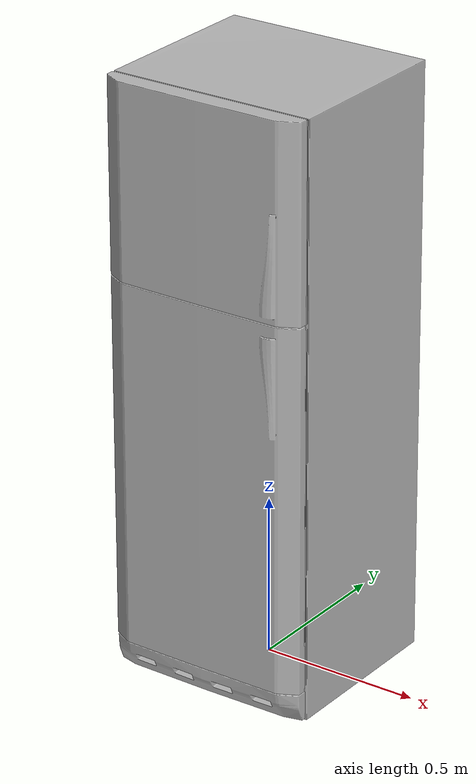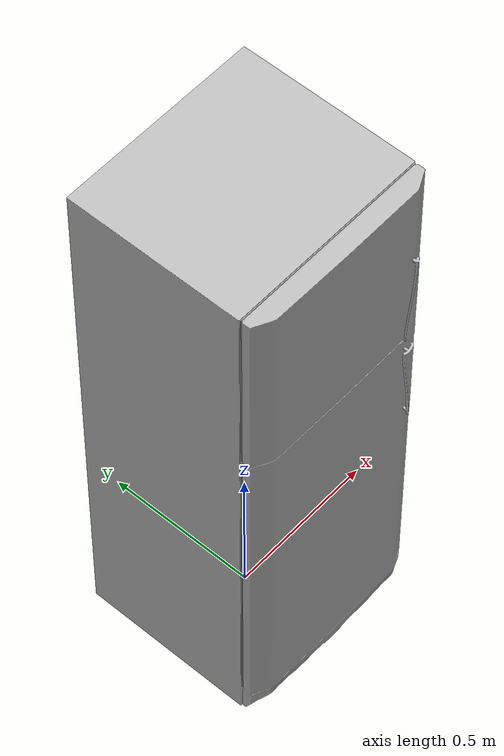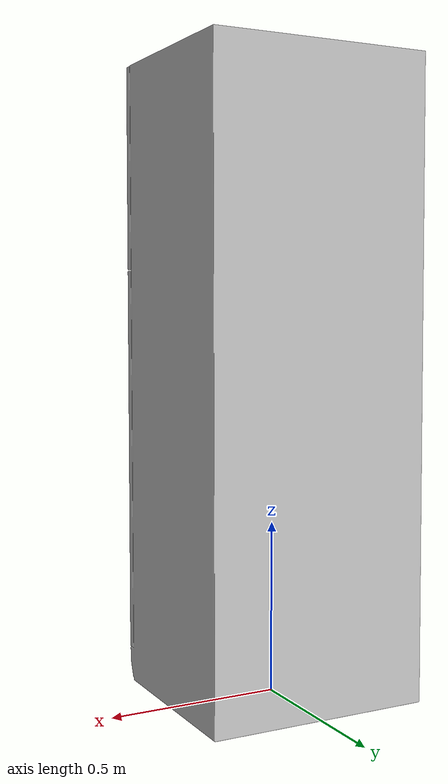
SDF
<?xml version='1.0'?>
<sdf version='1.6'>
  <model name='11_Fridge'>
    <link name='body'>
	  <inertial>
        <mass>90</mass>
        <pose frame=''>0 0 0 0 0 0</pose>
        <inertia>
          <ixx>29.473567499</ixx>
          <ixy>0</ixy>
          <ixz>0</ixz>
          <iyy>28.8525675</iyy>
          <iyz>0</iyz>
          <izz>7.154999</izz>
        </inertia>
      </inertial>
      <pose frame=''>0 0 0 0 -0 0</pose>
      <self_collide>0</self_collide>
      <kinematic>0</kinematic>
      <gravity>1</gravity>
      <visual name='visual'>
        <geometry>
          <mesh>
            <uri>model://Fridge_eeb632244952_lod0/meshes/visual_LowPoly_11_Fridge.dae</uri>
          </mesh>
        </geometry>
		<meta> <layer> 1 </layer></meta>
      </visual>
      <collision name='collision_0'>
        <laser_retro>0</laser_retro>
        <max_contacts>10</max_contacts>
        <pose frame=''>0 0 0 0 -0 0</pose>
        <geometry>
          <mesh>
            <uri>model://Fridge_eeb632244952_lod0/meshes/collision_11_Fridge.dae</uri>
            <scale>1 1 1</scale>
          </mesh>
        </geometry>
		<surface>
          <friction>
            <ode>
              <mu>0.4</mu>
              <mu2>0.4</mu2>
              <fdir1>0 0 0</fdir1>
              <slip1>0</slip1>
              <slip2>0</slip2>
            </ode>
            <torsional>
              <coefficient>1</coefficient>
              <patch_radius>0</patch_radius>
              <surface_radius>0</surface_radius>
              <use_patch_radius>1</use_patch_radius>
              <ode>
                <slip>0</slip>
              </ode>
            </torsional>
          </friction>
        </surface>
      </collision>
    </link>
    <static>true</static>
  </model>
</sdf>
